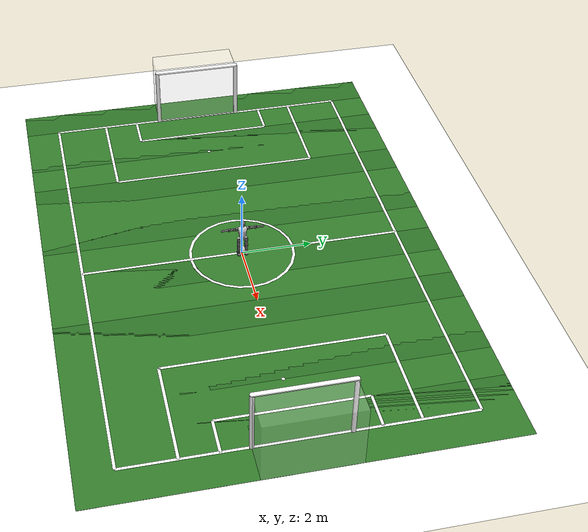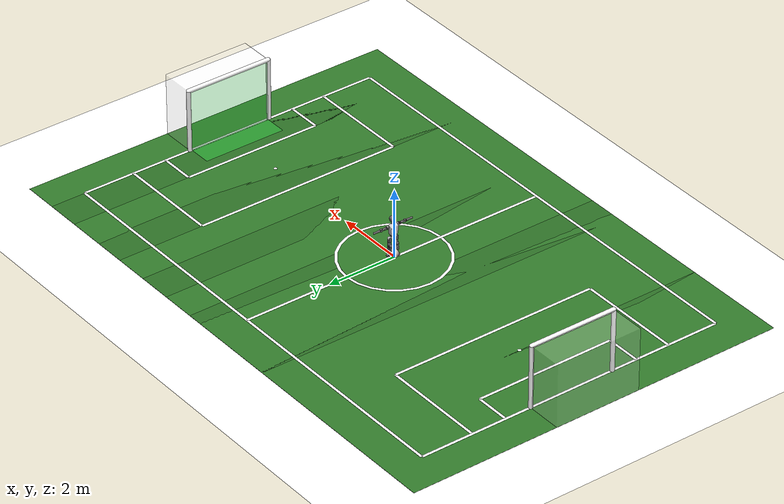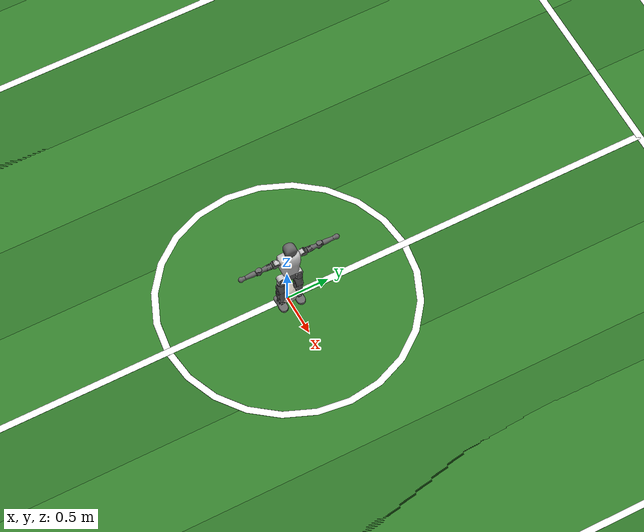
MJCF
<mujoco model="t1 scene shoot">
  <!-- Inherits t1.xml's simulation options (dt=.002, Euler, iterations=3/ls=5),
       matching the mujoco_playground T1 joystick training/deploy settings. -->
  <include file="t1.xml"/>

  <statistic center="0 0 0.5" extent="1.2" meansize="0.04"/>

  <visual>
    <headlight diffuse=".8 .8 .8" ambient=".2 .2 .2" specular="1 1 1"/>
    <rgba force="1 0 0 1"/>
    <global azimuth="140" elevation="-20"/>
    <map force="0.01"/>
    <scale forcewidth="0.3" contactwidth="0.5" contactheight="0.2"/>
    <quality shadowsize="8192"/>
  </visual>

  <asset>
    <texture type="skybox" builtin="gradient" rgb1="1 1 1" rgb2="1 1 1" width="800" height="800"/>
    <texture type="2d" name="groundplane" builtin="checker" mark="edge" rgb1="1 1 1" rgb2="1 1 1"
      markrgb="0 0 0" width="300" height="300"/>
    <material name="groundplane" texture="groundplane" texuniform="true" texrepeat="5 5" reflectance="0"/>

    <texture type="2d" name="grass_pitch" builtin="checker" rgb1="0.22 0.52 0.18" rgb2="0.17 0.44 0.15"
      width="2048" height="2048"/>
    <material name="grass_pitch" texture="grass_pitch" texuniform="true" texrepeat="18 12" reflectance="0.03" specular="0.08" shininess="0.1"/>

    <texture name="soccer_ball" type="cube"
      fileup="../common/assets/soccer_ball_up.png"
      filedown="../common/assets/soccer_ball_down.png"
      filefront="../common/assets/soccer_ball_front.png"
      fileback="../common/assets/soccer_ball_back.png"
      fileleft="../common/assets/soccer_ball_left.png"
      fileright="../common/assets/soccer_ball_right.png"/>
    <material name="soccer_ball" texture="soccer_ball"/>
  </asset>

  <worldbody>
    <geom name="floor" size="0 0 0.01" type="plane" material="groundplane" friction="1.2 0.1 0.5" priority="1" contype="1" conaffinity="0" condim="6"/>

    <!-- Adult-size (M-Field) pitch: 14m x 9m with official markings. -->
    <body name="pitch_markings" pos="0 0 0">
      <geom name="pitch_base" type="box" size="8 5.5 0.002" pos="0 0 0.002" material="grass_pitch" contype="0" conaffinity="0"/>

      <!-- Mowing stripes for more realistic grass appearance. -->
      <geom name="stripe_00" type="box" size="0.5 5.5 0.001" pos="-7.5 0 0.003" rgba="0.14 0.33 0.12 0.18" contype="0" conaffinity="0"/>
      <geom name="stripe_01" type="box" size="0.5 5.5 0.001" pos="-5.5 0 0.003" rgba="0.14 0.33 0.12 0.18" contype="0" conaffinity="0"/>
      <geom name="stripe_02" type="box" size="0.5 5.5 0.001" pos="-3.5 0 0.003" rgba="0.14 0.33 0.12 0.18" contype="0" conaffinity="0"/>
      <geom name="stripe_03" type="box" size="0.5 5.5 0.001" pos="-1.5 0 0.003" rgba="0.14 0.33 0.12 0.18" contype="0" conaffinity="0"/>
      <geom name="stripe_04" type="box" size="0.5 5.5 0.001" pos="0.5 0 0.003" rgba="0.14 0.33 0.12 0.18" contype="0" conaffinity="0"/>
      <geom name="stripe_05" type="box" size="0.5 5.5 0.001" pos="2.5 0 0.003" rgba="0.14 0.33 0.12 0.18" contype="0" conaffinity="0"/>
      <geom name="stripe_06" type="box" size="0.5 5.5 0.001" pos="4.5 0 0.003" rgba="0.14 0.33 0.12 0.18" contype="0" conaffinity="0"/>
      <geom name="stripe_07" type="box" size="0.5 5.5 0.001" pos="6.5 0 0.003" rgba="0.14 0.33 0.12 0.18" contype="0" conaffinity="0"/>

      <!-- Line width set to 0.08m (allowed range: 0.05m to 0.12m). -->
      <geom name="line_touch_top" type="box" size="7 0.04 0.001" pos="0 4.5 0.008" rgba="1 1 1 1" contype="0" conaffinity="0"/>
      <geom name="line_touch_bottom" type="box" size="7 0.04 0.001" pos="0 -4.5 0.008" rgba="1 1 1 1" contype="0" conaffinity="0"/>
      <geom name="line_goal_left" type="box" size="0.04 4.5 0.001" pos="-7 0 0.008" rgba="1 1 1 1" contype="0" conaffinity="0"/>
      <geom name="line_goal_right" type="box" size="0.04 4.5 0.001" pos="7 0 0.008" rgba="1 1 1 1" contype="0" conaffinity="0"/>
      <geom name="line_halfway" type="box" size="0.04 4.5 0.001" pos="0 0 0.008" rgba="1 1 1 1" contype="0" conaffinity="0"/>

      <!-- Center circle diameter: 3.0m. Disks sit below the field lines (z=0.008) so the halfway line stays visible. Inner disk uses the grass texture to blend with the pitch. -->
      <geom name="line_center_circle_outer" type="cylinder" size="1.5 0.001" pos="0 0 0.006" rgba="1 1 1 1" contype="0" conaffinity="0"/>
      <geom name="line_center_circle_inner" type="cylinder" size="1.42 0.001" pos="0 0 0.007" material="grass_pitch" contype="0" conaffinity="0"/>
      <geom name="line_center_mark" type="cylinder" size="0.05 0.001" pos="0 0 0.0084" rgba="1 1 1 1" contype="0" conaffinity="0"/>

      <!-- Penalty marks distance: 2.0m from each goal line. -->
      <geom name="line_penalty_mark_left" type="cylinder" size="0.05 0.001" pos="-5 0 0.0084" rgba="1 1 1 1" contype="0" conaffinity="0"/>
      <geom name="line_penalty_mark_right" type="cylinder" size="0.05 0.001" pos="5 0 0.0084" rgba="1 1 1 1" contype="0" conaffinity="0"/>

      <!-- Penalty area: length 3.0m, width 6.0m. -->
      <geom name="line_penalty_left_front" type="box" size="0.04 3.0 0.001" pos="-4 0 0.008" rgba="1 1 1 1" contype="0" conaffinity="0"/>
      <geom name="line_penalty_left_top" type="box" size="1.5 0.04 0.001" pos="-5.5 3 0.008" rgba="1 1 1 1" contype="0" conaffinity="0"/>
      <geom name="line_penalty_left_bottom" type="box" size="1.5 0.04 0.001" pos="-5.5 -3 0.008" rgba="1 1 1 1" contype="0" conaffinity="0"/>
      <geom name="line_penalty_right_front" type="box" size="0.04 3.0 0.001" pos="4 0 0.008" rgba="1 1 1 1" contype="0" conaffinity="0"/>
      <geom name="line_penalty_right_top" type="box" size="1.5 0.04 0.001" pos="5.5 3 0.008" rgba="1 1 1 1" contype="0" conaffinity="0"/>
      <geom name="line_penalty_right_bottom" type="box" size="1.5 0.04 0.001" pos="5.5 -3 0.008" rgba="1 1 1 1" contype="0" conaffinity="0"/>

      <!-- Goal area: length 1.0m, width 4.0m. -->
      <geom name="line_goal_area_left_front" type="box" size="0.04 2.0 0.001" pos="-6 0 0.008" rgba="1 1 1 1" contype="0" conaffinity="0"/>
      <geom name="line_goal_area_left_top" type="box" size="0.5 0.04 0.001" pos="-6.5 2 0.008" rgba="1 1 1 1" contype="0" conaffinity="0"/>
      <geom name="line_goal_area_left_bottom" type="box" size="0.5 0.04 0.001" pos="-6.5 -2 0.008" rgba="1 1 1 1" contype="0" conaffinity="0"/>
      <geom name="line_goal_area_right_front" type="box" size="0.04 2.0 0.001" pos="6 0 0.008" rgba="1 1 1 1" contype="0" conaffinity="0"/>
      <geom name="line_goal_area_right_top" type="box" size="0.5 0.04 0.001" pos="6.5 2 0.008" rgba="1 1 1 1" contype="0" conaffinity="0"/>
      <geom name="line_goal_area_right_bottom" type="box" size="0.5 0.04 0.001" pos="6.5 -2 0.008" rgba="1 1 1 1" contype="0" conaffinity="0"/>
    </body>

    <body name="goal_marker" mocap="true" pos="7 0 0">
      <geom name="goal_region" type="box" size="0.03 1.2 0.875" pos="0 0 0.9"
            rgba="0.15 0.85 0.25 0.3" contype="0" conaffinity="0"/>
      <geom name="goal_region_base" type="box" size="0.35 1.2 0.001" pos="-0.32 0 0.01"
            rgba="0.15 0.85 0.25 0.35" contype="0" conaffinity="0"/>
    </body>

    <!-- Soccer goal posts (red team) -->
        <body name="goal_red" pos="-7 0 0">
      <geom name="goal_box_red" type="box" size="0.5 1.25 0.9"
        pos="-0.5 0 0.9" rgba="1 1 1 0.12" contype="0" conaffinity="0"/>
      <geom name="goal_post_red_left" type="cylinder" size="0.06 0.9"
        pos="0 1.25 0.9" rgba="1 1 1 1" contype="1" conaffinity="1"/>
      <geom name="goal_post_red_right" type="cylinder" size="0.06 0.9"
        pos="0 -1.25 0.9" rgba="1 1 1 1" contype="1" conaffinity="1"/>
      <geom name="goal_crossbar_red" type="capsule" size="0.06 1.25"
        pos="0 0 1.8" quat="0.707 0.707 0 0" rgba="1 1 1 1" contype="1" conaffinity="1"/>
    </body>

    <!-- Soccer goal posts (green team / opponent) -->
        <body name="goal_green" pos="7 0 0">
      <geom name="goal_box_green" type="box" size="0.5 1.25 0.9"
        pos="0.5 0 0.9" rgba="1 1 1 0.12" contype="0" conaffinity="0"/>
      <geom name="goal_post_green_left" type="cylinder" size="0.06 0.9"
        pos="0 1.25 0.9" rgba="1 1 1 1" contype="1" conaffinity="1"/>
      <geom name="goal_post_green_right" type="cylinder" size="0.06 0.9"
        pos="0 -1.25 0.9" rgba="1 1 1 1" contype="1" conaffinity="1"/>
      <geom name="goal_crossbar_green" type="capsule" size="0.06 1.25"
        pos="0 0 1.8" quat="0.707 0.707 0 0" rgba="1 1 1 1" contype="1" conaffinity="1"/>
    </body>

    <!-- Soccer ball -->
    <body name="soccer_ball" pos="0 0 0.117">
      <freejoint name="ball_root"/>
      <geom name="ball" type="sphere" size="0.117"
            condim="6" priority="1"
            solref="0.01 0.8" material="soccer_ball"/>
      <inertial pos="0 0 0" mass="0.45" diaginertia="0.011 0.011 0.011"/>
    </body>
  </worldbody>

  <contact>
    <!-- Essential Ball contacts -->
    <pair name="ball_left_foot" geom1="ball" geom2="left_foot" condim="3" friction="1.2 0.1 0.5"/>
    <pair name="ball_right_foot" geom1="ball" geom2="right_foot" condim="3" friction="1.2 0.1 0.5"/>
    <pair name="ball_floor" geom1="ball" geom2="floor" condim="6" friction="1 1 0.005 0.02 0.02"/>
  </contact>

  <keyframe>
    <key name="home"
      qpos="
    3.8 0 0.665
    1 0 0 0
    0 0
    0 -1.4 0 -0.4
    0 1.4 0 0.4
    0
    -0.2 0 0 0.4 -0.2 0
    -0.2 0 0 0.4 -0.2 0
    5 0 0.117
    1 0 0 0
    "
      ctrl="
    0 0
    0 -1.4 0 -0.4
    0 1.4 0 0.4
    0
    -0.2 0 0 0.4 -0.2 0
    -0.2 0 0 0.4 -0.2 0
    "/>
  </keyframe>
</mujoco>

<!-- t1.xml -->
<mujoco model="T1">
  <compiler angle="radian" meshdir="assets" autolimits="true"/>

  <option iterations="3" ls_iterations="5" timestep=".002" integrator="Euler">
    <flag eulerdamp="disable"/>
  </option>

  <asset>
    <material name="light_gray" rgba="0.76 0.76 0.76 1"/>
    <material name="medium_gray" rgba="0.4 0.4 0.4 1"/>

    <mesh file="Trunk.stl"/>
    <mesh file="H1.stl"/>
    <mesh file="H2.stl"/>
    <mesh file="AL1.stl"/>
    <mesh file="AL2.stl"/>
    <mesh file="AL3.stl"/>
    <mesh file="left_hand_link.stl"/>
    <mesh file="AR1.stl"/>
    <mesh file="AR2.stl"/>
    <mesh file="AR3.stl"/>
    <mesh file="right_hand_link.stl"/>
    <mesh file="Waist.stl"/>
    <mesh file="Hip_Pitch_Left.stl"/>
    <mesh file="Hip_Roll_Left.stl"/>
    <mesh file="Hip_Yaw_Left.stl"/>
    <mesh file="Shank_Left.stl"/>
    <mesh file="Ankle_Cross_Left.stl"/>
    <mesh file="left_foot_link.stl"/>
    <mesh file="Hip_Pitch_Right.stl"/>
    <mesh file="Hip_Roll_Right.stl"/>
    <mesh file="Hip_Yaw_Right.stl"/>
    <mesh file="Shank_Right.stl"/>
    <mesh file="Ankle_Cross_Right.stl"/>
    <mesh file="right_foot_link.stl"/>
  </asset>

  <default>
    <default class="t1">
      <geom condim="1" contype="0" conaffinity="0" material="medium_gray"/>
      <site rgba="1 0 0 1" size="0.01" group="5"/>
      <default class="visual">
        <geom type="mesh" contype="0" conaffinity="0" group="2"/>
      </default>
      <default class="collision">
        <geom group="3"/>
        <default class="foot">
          <geom size="0.1115 0.05 0.015" pos="0.01 0 -0.015" type="box" contype="4" conaffinity="4"/>
          <default class="foot_sphere">
            <geom contype="2" conaffinity="1" size=".01" type="sphere"/>
          </default>
        </default>
      </default>

      <joint frictionloss="0.1" armature="0.005"/>
      <position inheritrange="1"/>

      <default class="head">
        <joint actuatorfrcrange="-7 7" damping="2"/>
        <position kp="20"/>
        <default class="head_yaw">
          <joint axis="0 0 1" range="-1.57 1.57"/>
        </default>
        <default class="head_pitch">
          <joint axis="0 1 0" range="-0.35 1.22"/>
        </default>
      </default>
      <default class="shoulder">
        <joint actuatorfrcrange="-18 18" damping="2"/>
        <position kp="20"/>
        <default class="shoulder_pitch">
          <joint axis="0 1 0" range="-3.31 1.22"/>
        </default>
        <default class="shoulder_roll">
          <joint axis="1 0 0"/>
        </default>
      </default>
      <default class="elbow">
        <joint actuatorfrcrange="-18 18" damping="2"/>
        <position kp="20"/>
        <default class="elbow_pitch">
          <joint axis="0 1 0" range="-2.27 2.27"/>
        </default>
        <default class="elbow_yaw">
          <joint axis="0 0 1"/>
        </default>
      </default>
      <default class="waist">
        <joint axis="0 0 1" range="-1.57 1.57" actuatorfrcrange="-30 30" damping="3"/>
        <position kp="50"/>
      </default>
      <default class="hip">
        <default class="hip_pitch">
          <joint axis="0 1 0" range="-1.8 1.57" actuatorfrcrange="-45 45" damping="3"/>
          <position kp="30"/>
        </default>
        <default class="hip_roll">
          <joint axis="1 0 0" actuatorfrcrange="-30 30" damping="3"/>
          <position kp="30"/>
        </default>
        <default class="hip_yaw">
          <joint axis="0 0 1" range="-1 1" actuatorfrcrange="-30 30" damping="3"/>
          <position kp="30"/>
        </default>
      </default>
      <default class="knee">
        <joint axis="0 1 0" range="0 2.34" actuatorfrcrange="-60 60" damping="3"/>
        <position kp="30"/>
      </default>
      <default class="ankle">
        <position kp="10"/>
        <joint damping="3"/>
        <default class="ankle_pitch">
          <joint axis="0 1 0" range="-0.87 0.35" actuatorfrcrange="-20 20"/>
        </default>
        <default class="ankle_roll">
          <joint axis="1 0 0" range="-0.44 0.44" actuatorfrcrange="-15 15"/>
        </default>
      </default>
    </default>
  </default>

  <worldbody>
    <light name="spotlight" mode="targetbodycom" target="Trunk" pos="0 -2 4" exponent="20"/>
    <body name="Trunk" pos="0 0 .7" childclass="t1">
      <freejoint/>
      <inertial pos="0.0551365 -1.42058e-06 0.105062" quat="0.99996 1.40561e-05 -0.00899532 -1.39249e-05" mass="11.7"
        diaginertia="0.0915404 0.0767787 0.0556055"/>
      <site name="imu"/>
      <camera name="track" pos="1.248 -0.947 0.5" xyaxes="0.628 0.779 -0.000 -0.274 0.221 0.936" mode="trackcom"/>
      <geom class="visual" material="light_gray" mesh="Trunk"/>
      <geom class="collision" size="0.075 0.1 0.15" pos="0.06 0 0.12" type="box"/>
      <body name="H1" pos="0.0625 0 0.243">
        <inertial pos="-0.000508 -0.001403 0.057432" quat="0.763881 -0.0132172 0.00173419 0.645219" mass="0.44391"
          diaginertia="0.000241549 0.00022351 0.000149941"/>
        <joint name="AAHead_yaw" class="head_yaw"/>
        <geom class="visual" mesh="H1"/>
        <body name="H2" pos="0 0 0.06185">
          <inertial pos="0.007802 0.001262 0.098631" quat="0.988453 0.106172 -0.0745686 -0.0782786" mass="0.631019"
            diaginertia="0.00203553 0.00192467 0.00172381"/>
          <joint name="Head_pitch" class="head_pitch"/>
          <geom class="visual" mesh="H2"/>
          <geom class="collision" size="0.08" pos="0.01 0 0.11"/>
        </body>
      </body>
      <body name="AL1" pos="0.0575 0.1063 0.219" quat="1 0 0.000440565 0">
        <inertial pos="-0.000677 0.044974 0" quat="0.50423 0.495734 -0.50423 0.495734" mass="0.53"
          diaginertia="0.001367 0.00129329 0.000292711"/>
        <joint name="Left_Shoulder_Pitch" class="shoulder_pitch"/>
        <geom class="visual" material="light_gray" mesh="AL1"/>
        <body name="AL2" pos="0 0.047 0">
          <inertial pos="0.003862 0.037976 0" quat="0.487991 0.511727 -0.487991 0.511727" mass="0.16"
            diaginertia="0.000401 0.00034538 0.00017662"/>
          <joint name="Left_Shoulder_Roll" range="-1.74 1.57" class="shoulder_roll"/>
          <geom class="visual" mesh="AL2"/>
          <body name="AL3" pos="0.00025 0.0605 0">
            <inertial pos="0 0.085353 -9.9e-05" quat="0.70641 0.707803 0 0" mass="1.02"
              diaginertia="0.012869 0.012798 0.000620953"/>
            <joint name="Left_Elbow_Pitch" class="elbow_pitch"/>
            <geom class="visual" mesh="AL3"/>
            <geom class="collision" size="0.03 0.075" pos="0 0.05 0" quat="0.707105 0.707108 0 0" type="cylinder"/>
            <body name="left_hand_link" pos="0 0.1471 0">
              <inertial pos="-0.000108 0.109573 0.000591" quat="0.707866 0.706347 -5.22939e-05 -0.000214913"
                mass="0.327214" diaginertia="0.008159 0.00813104 0.000214962"/>
              <joint name="Left_Elbow_Yaw" range="-2.44 0" class="elbow_yaw"/>
              <geom class="visual" mesh="left_hand_link"/>
              <geom class="collision" size="0.03 0.0875" pos="0 0.13 0" quat="0.707105 0.707108 0 0" type="cylinder"/>
              <site name="left_hand" pos="0 .215 0"/>
            </body>
          </body>
        </body>
      </body>
      <body name="AR1" pos="0.0575 -0.1063 0.219" quat="1 0 0.000440565 0">
        <inertial pos="-0.000677 -0.044974 0" quat="0.50423 0.495734 -0.50423 0.495734" mass="0.53"
          diaginertia="0.001367 0.00129329 0.000292711"/>
        <joint name="Right_Shoulder_Pitch" class="shoulder_pitch"/>
        <geom class="visual" material="light_gray" mesh="AR1"/>
        <body name="AR2" pos="0 -0.047 0">
          <inertial pos="0.003862 -0.037976 0" quat="0.511727 0.487991 -0.511727 0.487991" mass="0.16"
            diaginertia="0.000401 0.00034538 0.00017662"/>
          <joint name="Right_Shoulder_Roll" range="-1.57 1.74" class="shoulder_roll"/>
          <geom class="visual" mesh="AR2"/>
          <body name="AR3" pos="0.00025 -0.0605 0">
            <inertial pos="0 -0.085353 -9.9e-05" quat="0.707803 0.70641 0 0" mass="1.02"
              diaginertia="0.012869 0.012798 0.000620953"/>
            <joint name="Right_Elbow_Pitch" class="elbow_pitch"/>
            <geom class="visual" mesh="AR3"/>
            <geom class="collision" size="0.03 0.075" pos="0 -0.05 0" quat="0.707105 0.707108 0 0" type="cylinder"/>
            <body name="right_hand_link" pos="0 -0.1471 0">
              <inertial pos="-0.000108 -0.109573 0.000591" quat="0.706347 0.707866 0.000214913 5.22939e-05"
                mass="0.327214" diaginertia="0.008159 0.00813104 0.000214962"/>
              <joint name="Right_Elbow_Yaw" range="0 2.44" class="elbow_yaw"/>
              <geom class="visual" mesh="right_hand_link"/>
              <geom class="collision" size="0.03 0.0875" pos="0 -0.13 0" quat="0.707105 0.707108 0 0" type="cylinder"/>
              <site name="right_hand" pos="0 -.215 0"/>
            </body>
          </body>
        </body>
      </body>
      <body name="Waist" pos="0.0625 0 -0.1155">
        <inertial pos="0.002284 3e-06 0.007301" quat="0.983649 0.000360386 -0.180076 0.00269791" mass="2.581"
          diaginertia="0.00536742 0.005299 0.00474258"/>
        <joint name="Waist" class="waist"/>
        <geom class="visual" mesh="Waist"/>
        <body name="Hip_Pitch_Left" pos="0 0.106 0">
          <inertial pos="0.000534 -0.007296 -0.018083" quat="0.975141 0.2211 0.0145808 0.0017406" mass="1.021"
            diaginertia="0.00180547 0.00145926 0.00125327"/>
          <joint name="Left_Hip_Pitch" class="hip_pitch"/>
          <geom class="visual" material="light_gray" mesh="Hip_Pitch_Left"/>
          <body name="Hip_Roll_Left" pos="0 0 -0.02">
            <inertial pos="0.001101 2.4e-05 -0.05375" quat="0.707081 -0.00599604 -0.00599604 0.707081" mass="0.385"
              diaginertia="0.001743 0.00151729 0.000514712"/>
            <joint name="Left_Hip_Roll" range="-0.2 1.57" class="hip_roll"/>
            <geom class="visual" mesh="Hip_Roll_Left"/>
            <body name="Hip_Yaw_Left" pos="0 0 -0.081854">
              <inertial pos="-0.007233 0.000206 -0.089184" quat="0.696808 -0.033953 -0.0315708 0.715758" mass="2.166"
                diaginertia="0.0257334 0.0253024 0.00259215"/>
              <joint name="Left_Hip_Yaw" class="hip_yaw"/>
              <geom class="visual" mesh="Hip_Yaw_Left"/>
              <geom class="collision" size="0.05 0.08" type="cylinder"/>
              <body name="Shank_Left" pos="-0.014 0 -0.134">
                <inertial pos="-0.006012 0.000259 -0.124318" quat="0.997573 0.00144024 -0.023949 0.0653706" mass="1.73"
                  diaginertia="0.0346951 0.0345375 0.00185844"/>
                <joint name="Left_Knee_Pitch" class="knee"/>
                <geom class="visual" mesh="Shank_Left"/>
                <geom class="collision" size="0.05 0.075" pos="0 0 -0.12" type="cylinder"/>
                <body name="Ankle_Cross_Left" pos="0 0 -0.28">
                  <inertial pos="-0.003722 0 -0.007981" quat="0.443136 0.551027 0.551027 0.443136" mass="0.073"
                    diaginertia="2.9e-05 2.56589e-05 1.13411e-05"/>
                  <joint name="Left_Ankle_Pitch" class="ankle_pitch"/>
                  <geom class="visual" mesh="Ankle_Cross_Left"/>
                  <body name="left_foot_link" pos="0 0.00025 -0.012">
                    <inertial pos="-0.000249 0 -0.00914" quat="0 0.620755 0 0.784005" mass="0.685"
                      diaginertia="0.00269786 0.002385 0.00218714"/>
                    <joint name="Left_Ankle_Roll" class="ankle_roll"/>
                    <geom class="visual" mesh="left_foot_link"/>
                    <geom name="left_foot" class="foot"/>
                    <site name="left_foot"/>
                    <geom name="left_foot_1" class="foot_sphere" pos="0.1015 0.04 -0.02"/>
                    <geom name="left_foot_2" class="foot_sphere" pos="0.1015 -0.04 -0.02"/>
                    <geom name="left_foot_3" class="foot_sphere" pos="-0.1015 0.04 -0.02"/>
                    <geom name="left_foot_4" class="foot_sphere" pos="-0.1015 -0.04 -0.02"/>
                  </body>
                </body>
              </body>
            </body>
          </body>
        </body>
        <body name="Hip_Pitch_Right" pos="0 -0.106 0">
          <inertial pos="0.000534 0.007514 -0.018082" quat="0.973446 -0.228403 0.0147148 -0.00419349" mass="1.021"
            diaginertia="0.00180552 0.0014632 0.00124928"/>
          <joint name="Right_Hip_Pitch" class="hip_pitch"/>
          <geom class="visual" material="light_gray" mesh="Hip_Pitch_Right"/>
          <body name="Hip_Roll_Right" pos="0 0 -0.02">
            <inertial pos="0.001099 2.4e-05 -0.053748" quat="0.707081 -0.00599604 -0.00599604 0.707081" mass="0.385"
              diaginertia="0.001743 0.00151729 0.000514712"/>
            <joint name="Right_Hip_Roll" range="-1.57 0.2" class="hip_roll"/>
            <geom class="visual" mesh="Hip_Roll_Right"/>
            <body name="Hip_Yaw_Right" pos="0 0 -0.081854">
              <inertial pos="-0.007191 -0.000149 -0.08922" quat="0.714468 -0.0315638 -0.0336391 0.698146" mass="2.17"
                diaginertia="0.0257623 0.0253298 0.00259389"/>
              <joint name="Right_Hip_Yaw" class="hip_yaw"/>
              <geom class="visual" mesh="Hip_Yaw_Right"/>
              <geom class="collision" size="0.05 0.08" type="cylinder"/>
              <body name="Shank_Right" pos="-0.014 0 -0.134">
                <inertial pos="-0.005741 -0.000541 -0.122602" quat="0.99926 -0.000580963 -0.023461 -0.0304754"
                  mass="1.79" diaginertia="0.0351717 0.0349574 0.00196589"/>
                <joint name="Right_Knee_Pitch" class="knee"/>
                <geom class="visual" mesh="Shank_Right"/>
                <geom class="collision" size="0.05 0.075" pos="0 0 -0.12" type="cylinder"/>
                <body name="Ankle_Cross_Right" pos="0 0 -0.28">
                  <inertial pos="-0.003722 0 -0.007981" quat="0.443136 0.551027 0.551027 0.443136" mass="0.073"
                    diaginertia="2.9e-05 2.56589e-05 1.13411e-05"/>
                  <joint name="Right_Ankle_Pitch" class="ankle_pitch"/>
                  <geom class="visual" mesh="Ankle_Cross_Right"/>
                  <body name="right_foot_link" pos="0 -0.00025 -0.012">
                    <inertial pos="-0.000248 0 -0.00914" quat="0 0.620755 0 0.784005" mass="0.685"
                      diaginertia="0.00269786 0.002385 0.00218714"/>
                    <joint name="Right_Ankle_Roll" class="ankle_roll"/>
                    <geom class="visual" mesh="right_foot_link"/>
                    <geom name="right_foot" class="foot"/>
                    <site name="right_foot"/>
                    <geom name="right_foot_1" class="foot_sphere" pos="0.1015 0.04 -0.02"/>
                    <geom name="right_foot_2" class="foot_sphere" pos="0.1015 -0.04 -0.02"/>
                    <geom name="right_foot_3" class="foot_sphere" pos="-0.1015 0.04 -0.02"/>
                    <geom name="right_foot_4" class="foot_sphere" pos="-0.1015 -0.04 -0.02"/>
                  </body>
                </body>
              </body>
            </body>
          </body>
        </body>
      </body>
    </body>
  </worldbody>

  <sensor>
    <gyro site="imu" name="gyro"/>
    <velocimeter site="imu" name="local_linvel"/>
    <accelerometer site="imu" name="accelerometer"/>
    <framezaxis objtype="site" objname="imu" name="upvector"/>
    <framexaxis objtype="site" objname="imu" name="forwardvector"/>
    <framelinvel objtype="site" objname="imu" name="global_linvel"/>
    <frameangvel objtype="site" objname="imu" name="global_angvel"/>
    <framepos objtype="site" objname="imu" name="position"/>
    <framequat objtype="site" objname="imu" name="orientation"/>
    <framelinvel objtype="site" objname="left_foot" name="left_foot_global_linvel"/>
    <framelinvel objtype="site" objname="right_foot" name="right_foot_global_linvel"/>
    <framepos objtype="site" objname="left_foot" name="left_foot_pos"/>
    <framepos objtype="site" objname="right_foot" name="right_foot_pos"/>
  </sensor>

  <actuator>
    <position class="head_yaw" name="AAHead_yaw" joint="AAHead_yaw"/>
    <position class="head_pitch" name="Head_pitch" joint="Head_pitch"/>

    <position class="shoulder_pitch" name="Left_Shoulder_Pitch" joint="Left_Shoulder_Pitch"/>
    <position class="shoulder_roll" name="Left_Shoulder_Roll" joint="Left_Shoulder_Roll"/>
    <position class="elbow_pitch" name="Left_Elbow_Pitch" joint="Left_Elbow_Pitch"/>
    <position class="elbow_yaw" name="Left_Elbow_Yaw" joint="Left_Elbow_Yaw"/>

    <position class="shoulder_pitch" name="Right_Shoulder_Pitch" joint="Right_Shoulder_Pitch"/>
    <position class="shoulder_roll" name="Right_Shoulder_Roll" joint="Right_Shoulder_Roll"/>
    <position class="elbow_pitch" name="Right_Elbow_Pitch" joint="Right_Elbow_Pitch"/>
    <position class="elbow_yaw" name="Right_Elbow_Yaw" joint="Right_Elbow_Yaw"/>

    <position class="waist" name="Waist" joint="Waist"/>

    <position class="hip_pitch" name="Left_Hip_Pitch" joint="Left_Hip_Pitch"/>
    <position class="hip_roll" name="Left_Hip_Roll" joint="Left_Hip_Roll"/>
    <position class="hip_yaw" name="Left_Hip_Yaw" joint="Left_Hip_Yaw"/>
    <position class="knee" name="Left_Knee_Pitch" joint="Left_Knee_Pitch"/>
    <position class="ankle_pitch" name="Left_Ankle_Pitch" joint="Left_Ankle_Pitch"/>
    <position class="ankle_roll" name="Left_Ankle_Roll" joint="Left_Ankle_Roll"/>

    <position class="hip_pitch" name="Right_Hip_Pitch" joint="Right_Hip_Pitch"/>
    <position class="hip_roll" name="Right_Hip_Roll" joint="Right_Hip_Roll"/>
    <position class="hip_yaw" name="Right_Hip_Yaw" joint="Right_Hip_Yaw"/>
    <position class="knee" name="Right_Knee_Pitch" joint="Right_Knee_Pitch"/>
    <position class="ankle_pitch" name="Right_Ankle_Pitch" joint="Right_Ankle_Pitch"/>
    <position class="ankle_roll" name="Right_Ankle_Roll" joint="Right_Ankle_Roll"/>
  </actuator>
</mujoco>
